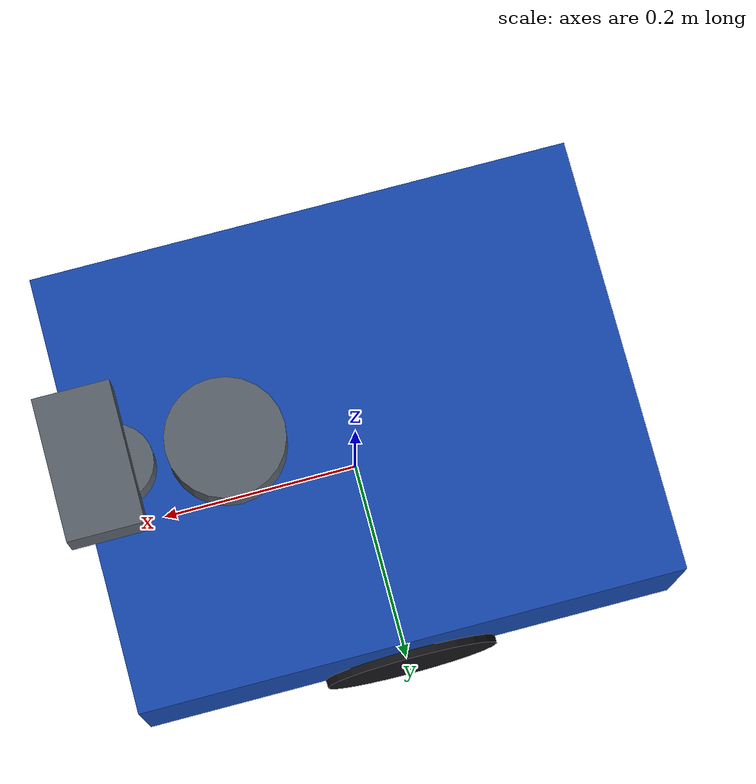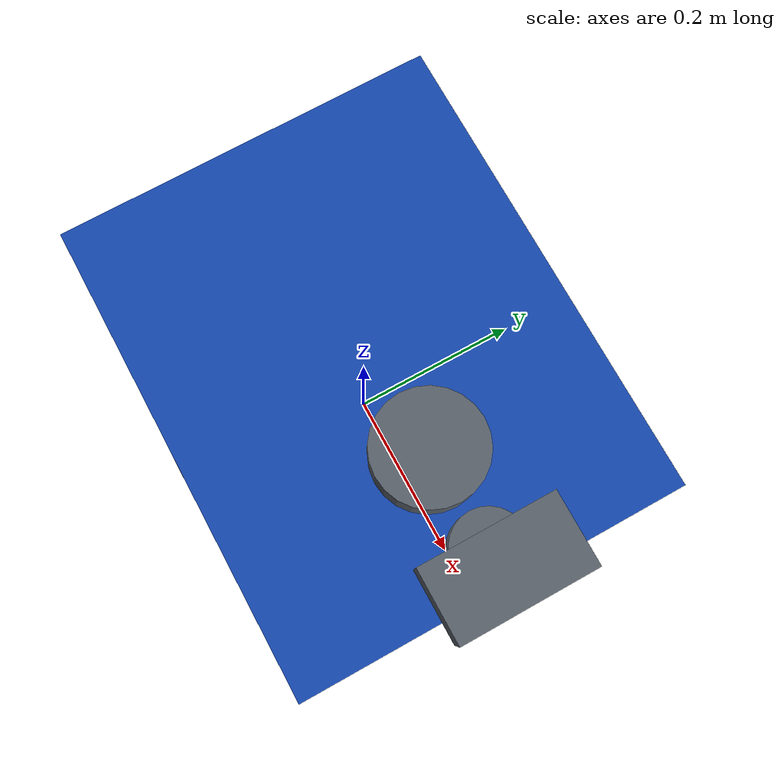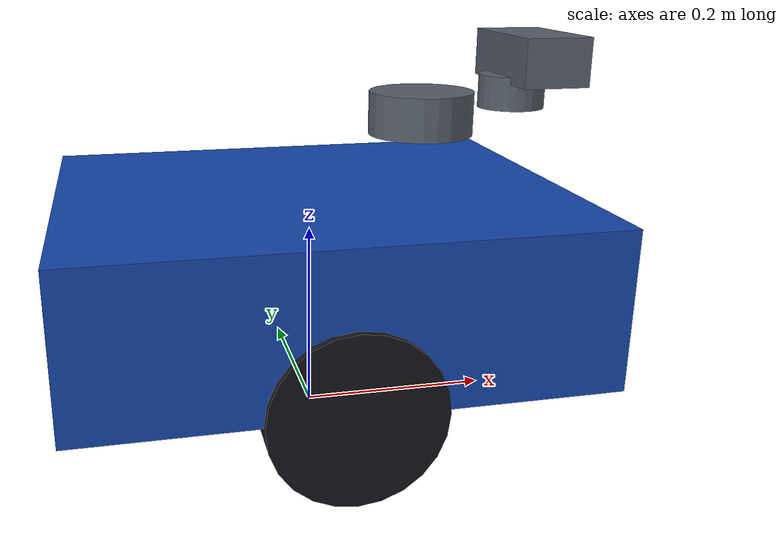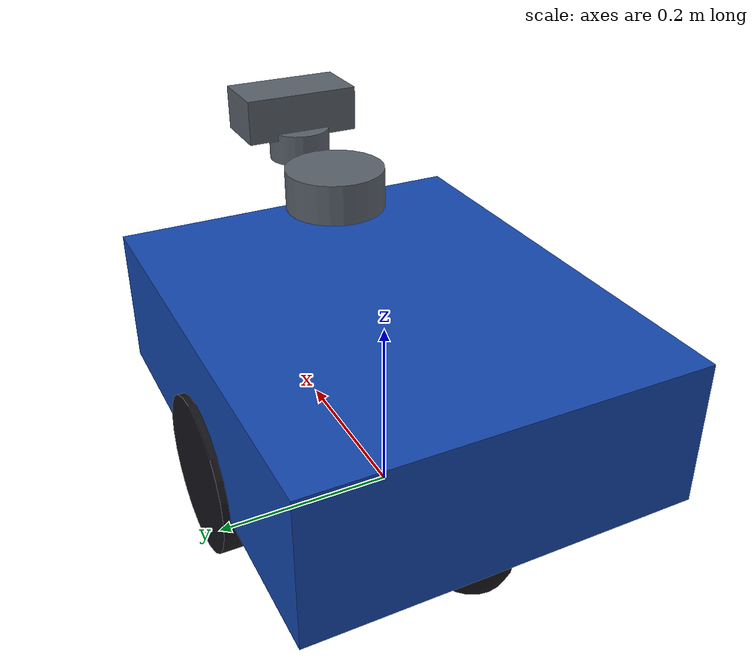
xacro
<?xml version="1.0"?>
<robot xmlns:xacro="http://www.ros.org/wiki/xacro" name="patrol_robot">
  <xacro:arg name="ground_truth_odometry" default="true"/>
  <!-- 将来适配真机时，优先修改下面这些尺寸和质量。 -->
  <xacro:property name="base_length" value="0.52"/>
  <xacro:property name="base_width" value="0.42"/>
  <xacro:property name="base_height" value="0.16"/>
  <xacro:property name="base_mass" value="12.0"/>
  <xacro:property name="wheel_radius" value="0.085"/>
  <xacro:property name="wheel_width" value="0.045"/>
  <xacro:property name="wheel_separation" value="0.39"/>

  <material name="blue">
    <color rgba="0.08 0.28 0.68 1.0"/>
  </material>
  <material name="dark">
    <color rgba="0.08 0.08 0.10 1.0"/>
  </material>
  <material name="sensor_gray">
    <color rgba="0.35 0.38 0.42 1.0"/>
  </material>

  <link name="base_footprint"/>

  <joint name="base_footprint_joint" type="fixed">
    <parent link="base_footprint"/>
    <child link="base_link"/>
    <origin xyz="0 0 ${wheel_radius}" rpy="0 0 0"/>
  </joint>

  <link name="base_link">
    <visual>
      <origin xyz="0 0 ${base_height / 2.0}" rpy="0 0 0"/>
      <geometry>
        <box size="${base_length} ${base_width} ${base_height}"/>
      </geometry>
      <material name="blue"/>
    </visual>
    <collision>
      <origin xyz="0 0 ${base_height / 2.0}" rpy="0 0 0"/>
      <geometry>
        <box size="${base_length} ${base_width} ${base_height}"/>
      </geometry>
    </collision>
    <inertial>
      <!-- 降低重心，抑制 Gazebo 中加减速和碰撞引起的俯仰。 -->
      <origin xyz="0 0 ${base_height * 0.38}" rpy="0 0 0"/>
      <mass value="${base_mass}"/>
      <inertia
        ixx="${base_mass * (base_width * base_width + base_height * base_height) / 12.0}"
        ixy="0" ixz="0"
        iyy="${base_mass * (base_length * base_length + base_height * base_height) / 12.0}"
        iyz="0"
        izz="${base_mass * (base_length * base_length + base_width * base_width) / 12.0}"/>
    </inertial>
  </link>

  <xacro:macro name="drive_wheel" params="prefix y">
    <link name="${prefix}_wheel_link">
      <visual>
        <geometry>
          <cylinder radius="${wheel_radius}" length="${wheel_width}"/>
        </geometry>
        <material name="dark"/>
      </visual>
      <collision>
        <geometry>
          <cylinder radius="${wheel_radius}" length="${wheel_width}"/>
        </geometry>
      </collision>
      <inertial>
        <mass value="0.65"/>
        <inertia ixx="0.0022" ixy="0" ixz="0" iyy="0.0022" iyz="0" izz="0.0007"/>
      </inertial>
    </link>
    <joint name="${prefix}_wheel_joint" type="continuous">
      <parent link="base_link"/>
      <child link="${prefix}_wheel_link"/>
      <!--
        车轮圆柱轴必须指向 base_link 的 +Y。原来的 +pi/2 会把局部 Z 轴
        转到 -Y，导致 Gazebo 物理运动方向与差速插件里程计方向相反。
      -->
      <origin xyz="0 ${y} 0" rpy="${-pi / 2.0} 0 0"/>
      <axis xyz="0 0 1"/>
      <dynamics damping="0.05" friction="0.1"/>
    </joint>
    <gazebo reference="${prefix}_wheel_link">
      <mu1>1.0</mu1>
      <mu2>1.0</mu2>
    </gazebo>
  </xacro:macro>

  <xacro:drive_wheel prefix="left" y="${wheel_separation / 2.0}"/>
  <xacro:drive_wheel prefix="right" y="${-wheel_separation / 2.0}"/>

  <link name="rear_caster_link">
    <visual>
      <geometry><sphere radius="0.045"/></geometry>
      <material name="dark"/>
    </visual>
    <collision>
      <geometry><sphere radius="0.045"/></geometry>
    </collision>
    <inertial>
      <mass value="0.15"/>
      <inertia ixx="0.00012" ixy="0" ixz="0" iyy="0.00012" iyz="0" izz="0.00012"/>
    </inertial>
  </link>
  <joint name="rear_caster_joint" type="fixed">
    <parent link="base_link"/>
    <child link="rear_caster_link"/>
    <origin xyz="-0.19 0 -0.035" rpy="0 0 0"/>
  </joint>
  <gazebo reference="rear_caster_link">
    <mu1>0.01</mu1>
    <mu2>0.01</mu2>
  </gazebo>

  <!--
    前万向轮与后万向轮形成完整支撑面。只有后万向轮时，重心位于驱动轴
    边缘，向前加速或碰到障碍后车体会翘起，导致激光扫描平面倾斜。
  -->
  <link name="front_caster_link">
    <visual>
      <geometry><sphere radius="0.045"/></geometry>
      <material name="dark"/>
    </visual>
    <collision>
      <geometry><sphere radius="0.045"/></geometry>
    </collision>
    <inertial>
      <mass value="0.15"/>
      <inertia ixx="0.00012" ixy="0" ixz="0" iyy="0.00012" iyz="0" izz="0.00012"/>
    </inertial>
  </link>
  <joint name="front_caster_joint" type="fixed">
    <parent link="base_link"/>
    <child link="front_caster_link"/>
    <origin xyz="0.19 0 -0.035" rpy="0 0 0"/>
  </joint>
  <gazebo reference="front_caster_link">
    <mu1>0.01</mu1>
    <mu2>0.01</mu2>
  </gazebo>

  <link name="laser_link">
    <visual>
      <geometry><cylinder radius="0.055" length="0.045"/></geometry>
      <material name="sensor_gray"/>
    </visual>
    <collision>
      <geometry><cylinder radius="0.055" length="0.045"/></geometry>
    </collision>
    <inertial>
      <mass value="0.18"/>
      <inertia ixx="0.00012" ixy="0" ixz="0" iyy="0.00012" iyz="0" izz="0.0002"/>
    </inertial>
  </link>
  <joint name="laser_joint" type="fixed">
    <parent link="base_link"/>
    <child link="laser_link"/>
    <origin xyz="0.12 0 0.235" rpy="0 0 0"/>
  </joint>

  <link name="imu_link">
    <inertial>
      <mass value="0.02"/>
      <inertia ixx="0.00001" ixy="0" ixz="0" iyy="0.00001" iyz="0" izz="0.00001"/>
    </inertial>
  </link>
  <joint name="imu_joint" type="fixed">
    <parent link="base_link"/>
    <child link="imu_link"/>
    <origin xyz="0 0 0.12" rpy="0 0 0"/>
  </joint>

  <!--
    两轴 RGB-D 云台：水平关节绕 Z 轴旋转，俯仰关节绕 Y 轴旋转。
    真机可保留相同关节和控制话题，仅替换外参及舵机驱动。
  -->
  <link name="camera_pan_link">
    <visual>
      <geometry><cylinder radius="0.035" length="0.035"/></geometry>
      <material name="sensor_gray"/>
    </visual>
    <collision>
      <geometry><cylinder radius="0.035" length="0.035"/></geometry>
    </collision>
    <inertial>
      <mass value="0.08"/>
      <inertia ixx="0.00004" ixy="0" ixz="0" iyy="0.00004" iyz="0" izz="0.00005"/>
    </inertial>
  </link>
  <joint name="camera_pan_joint" type="revolute">
    <parent link="base_link"/>
    <child link="camera_pan_link"/>
    <origin xyz="0.22 0 0.255" rpy="0 0 0"/>
    <axis xyz="0 0 1"/>
    <limit lower="${-pi / 2.0}" upper="${pi / 2.0}" effort="2.0" velocity="1.2"/>
    <dynamics damping="0.12" friction="0.03"/>
  </joint>

  <link name="camera_link">
    <visual>
      <geometry><box size="0.07 0.13 0.05"/></geometry>
      <material name="sensor_gray"/>
    </visual>
    <collision>
      <geometry><box size="0.07 0.13 0.05"/></geometry>
    </collision>
    <inertial>
      <mass value="0.12"/>
      <inertia ixx="0.00019" ixy="0" ixz="0" iyy="0.00007" iyz="0" izz="0.00022"/>
    </inertial>
  </link>
  <joint name="camera_tilt_joint" type="revolute">
    <parent link="camera_pan_link"/>
    <child link="camera_link"/>
    <origin xyz="0.02 0 0.035" rpy="0 0 0"/>
    <axis xyz="0 1 0"/>
    <!-- 物理关节正方向为向下；网页接口会转换为“向上为正”。 -->
    <limit lower="-0.436332" upper="0.610865" effort="2.0" velocity="1.0"/>
    <dynamics damping="0.10" friction="0.03"/>
  </joint>

  <!-- ROS REP-103 光学坐标系：+Z 向前、+X 向右、+Y 向下。 -->
  <link name="camera_depth_optical_frame"/>
  <joint name="camera_depth_optical_joint" type="fixed">
    <parent link="camera_link"/>
    <child link="camera_depth_optical_frame"/>
    <origin xyz="0.036 0 0" rpy="${-pi / 2.0} 0 ${-pi / 2.0}"/>
  </joint>

  <gazebo reference="laser_link">
    <sensor name="lidar" type="gpu_lidar">
      <topic>/scan</topic>
      <gz_frame_id>laser_link</gz_frame_id>
      <update_rate>10</update_rate>
      <always_on>true</always_on>
      <visualize>false</visualize>
      <lidar>
        <scan>
          <horizontal>
            <samples>720</samples>
            <resolution>1</resolution>
            <min_angle>-3.14159265</min_angle>
            <max_angle>3.14159265</max_angle>
          </horizontal>
        </scan>
        <range>
          <min>0.08</min>
          <max>12.0</max>
          <resolution>0.01</resolution>
        </range>
        <noise>
          <type>gaussian</type>
          <mean>0.0</mean>
          <stddev>0.005</stddev>
        </noise>
      </lidar>
    </sensor>
  </gazebo>
  <gazebo reference="imu_link">
    <sensor name="imu" type="imu">
      <topic>/imu</topic>
      <gz_frame_id>imu_link</gz_frame_id>
      <update_rate>50</update_rate>
      <always_on>true</always_on>
      <angular_velocity>
        <x><noise type="gaussian"><mean>0</mean><stddev>0.002</stddev><bias_mean>0.0002</bias_mean><bias_stddev>0.0001</bias_stddev></noise></x>
        <y><noise type="gaussian"><mean>0</mean><stddev>0.002</stddev><bias_mean>0.0002</bias_mean><bias_stddev>0.0001</bias_stddev></noise></y>
        <z><noise type="gaussian"><mean>0</mean><stddev>0.004</stddev><bias_mean>0.0005</bias_mean><bias_stddev>0.0002</bias_stddev></noise></z>
      </angular_velocity>
      <linear_acceleration>
        <x><noise type="gaussian"><mean>0</mean><stddev>0.03</stddev><bias_mean>0.01</bias_mean><bias_stddev>0.005</bias_stddev></noise></x>
        <y><noise type="gaussian"><mean>0</mean><stddev>0.03</stddev><bias_mean>0.01</bias_mean><bias_stddev>0.005</bias_stddev></noise></y>
        <z><noise type="gaussian"><mean>0</mean><stddev>0.04</stddev><bias_mean>0.01</bias_mean><bias_stddev>0.005</bias_stddev></noise></z>
      </linear_acceleration>
    </sensor>
  </gazebo>
  <gazebo reference="camera_link">
    <sensor name="rgbd_camera" type="rgbd_camera">
      <topic>/camera</topic>
      <gz_frame_id>camera_depth_optical_frame</gz_frame_id>
      <!-- 10 Hz 足以支撑室内低速避障，并给 Nav2 控制循环预留 CPU。 -->
      <update_rate>10</update_rate>
      <always_on>true</always_on>
      <visualize>false</visualize>
      <camera>
        <horizontal_fov>1.04719755</horizontal_fov>
        <image>
          <width>640</width>
          <height>480</height>
          <format>R8G8B8</format>
        </image>
        <clip>
          <near>0.20</near>
          <far>8.0</far>
        </clip>
        <noise>
          <type>gaussian</type>
          <mean>0.0</mean>
          <stddev>0.002</stddev>
        </noise>
      </camera>
    </sensor>
  </gazebo>

  <gazebo>
    <plugin filename="gz-sim-diff-drive-system" name="gz::sim::systems::DiffDrive">
      <left_joint>left_wheel_joint</left_joint>
      <right_joint>right_wheel_joint</right_joint>
      <wheel_separation>${wheel_separation}</wheel_separation>
      <wheel_radius>${wheel_radius}</wheel_radius>
      <topic>/cmd_vel</topic>
      <!-- 轮速积分仅保留为调试数据；导航使用下面的 Gazebo 真值里程计。 -->
      <odom_topic>/wheel_odom</odom_topic>
      <tf_topic>/wheel_tf</tf_topic>
      <frame_id>odom</frame_id>
      <child_frame_id>base_footprint</child_frame_id>
      <odom_publish_frequency>30</odom_publish_frequency>
      <max_linear_acceleration>0.8</max_linear_acceleration>
      <max_angular_acceleration>1.8</max_angular_acceleration>
    </plugin>
    <!-- Keep truth available for comparison, but let the default navigation
         profile expose wheel slip and IMU drift through an EKF. -->
    <xacro:if value="$(arg ground_truth_odometry)">
      <plugin filename="gz-sim-odometry-publisher-system" name="gz::sim::systems::OdometryPublisher">
        <odom_frame>odom</odom_frame>
        <robot_base_frame>base_footprint</robot_base_frame>
        <odom_topic>/odom</odom_topic>
        <tf_topic>/tf</tf_topic>
        <odom_publish_frequency>30</odom_publish_frequency>
        <dimensions>2</dimensions>
      </plugin>
    </xacro:if>
    <xacro:unless value="$(arg ground_truth_odometry)">
      <plugin filename="gz-sim-odometry-publisher-system" name="gz::sim::systems::OdometryPublisher">
        <odom_frame>ground_truth_odom</odom_frame>
        <robot_base_frame>base_footprint</robot_base_frame>
        <odom_topic>/ground_truth/odom</odom_topic>
        <tf_topic>/ground_truth/tf</tf_topic>
        <odom_publish_frequency>30</odom_publish_frequency>
        <dimensions>2</dimensions>
      </plugin>
    </xacro:unless>
    <plugin filename="gz-sim-joint-state-publisher-system" name="gz::sim::systems::JointStatePublisher">
      <topic>/joint_states</topic>
      <joint_name>left_wheel_joint</joint_name>
      <joint_name>right_wheel_joint</joint_name>
      <joint_name>camera_pan_joint</joint_name>
      <joint_name>camera_tilt_joint</joint_name>
    </plugin>
    <plugin filename="gz-sim-joint-position-controller-system" name="gz::sim::systems::JointPositionController">
      <joint_name>camera_pan_joint</joint_name>
      <topic>/camera/gimbal/pan/command</topic>
      <initial_position>0.0</initial_position>
      <use_velocity_commands>true</use_velocity_commands>
      <cmd_max>1.2</cmd_max>
    </plugin>
    <plugin filename="gz-sim-joint-position-controller-system" name="gz::sim::systems::JointPositionController">
      <joint_name>camera_tilt_joint</joint_name>
      <topic>/camera/gimbal/tilt/command</topic>
      <initial_position>0.0</initial_position>
      <use_velocity_commands>true</use_velocity_commands>
      <cmd_max>1.0</cmd_max>
    </plugin>
  </gazebo>
</robot>
